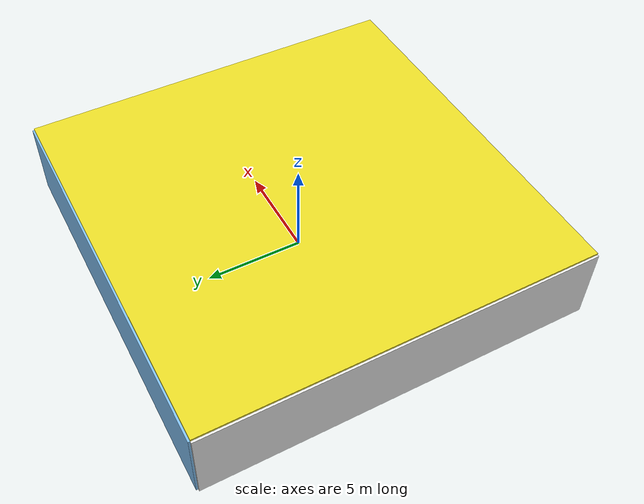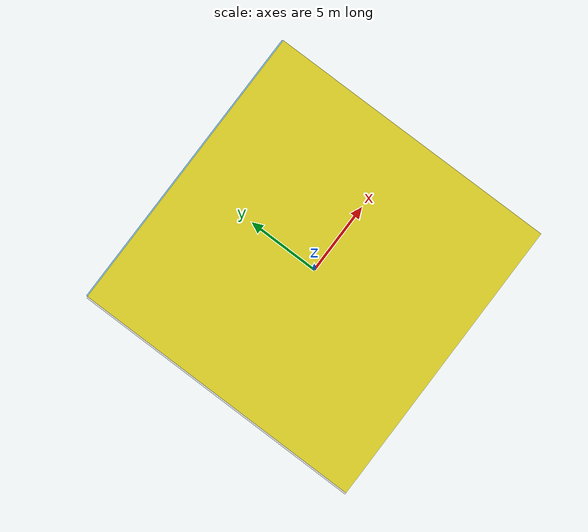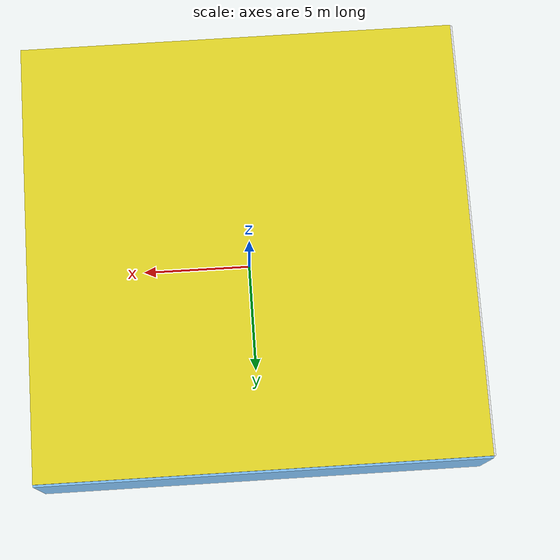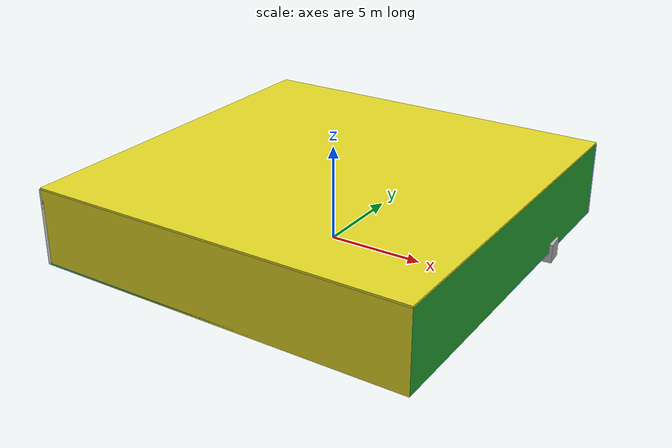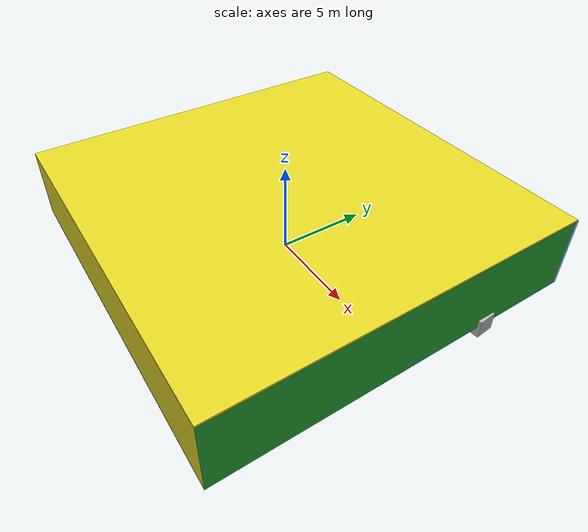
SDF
<sdf version="1.4">
 <world name="default">
  <physics type="ode">
   <max_step_size>0.001</max_step_size>
   <real_time_factor>1</real_time_factor>
   <real_time_update_rate>1000</real_time_update_rate>
   <gravity>0 0 -9.8</gravity>
  </physics>
  <scene><ambient>0.4 0.4 0.4 1</ambient><background>0.7 0.7 0.7 1</background><shadows>1</shadows></scene>
  <model name="Surrounding">
   <static>1</static>
   <link name="Ceiling">
    <collision name="Ceiling_Collision"><geometry><box><size>20 20 0.1</size></box></geometry></collision>
    <visual name="Ceiling_Visual">
     <geometry><box><size>20 20 0.1</size></box></geometry>
     <material>
      <script><uri>file://media/materials/scripts/gazebo.material</uri><name>Gazebo/YellowGlow</name></script>
     </material>
    </visual>
    <pose>0 0 4.05 0 0 0</pose>
   </link>
   <link name="Wall_South">
    <collision name="Wall_South_Collision">
     <geometry><box><size>20 0 4</size></box></geometry>
     <pose>0 0 2 0 -0 0</pose>
    </collision>
    <visual name="Wall_South_Visual">
     <pose>0 0 2 0 -0 0</pose>
     <geometry><box><size>20 0 4</size></box></geometry>
     <material>
      <script><uri>file://media/materials/scripts/gazebo.material</uri><name>Gazebo/YellowGlow</name></script>
     </material>
    </visual>
    <velocity_decay><linear>0</linear><angular>0</angular></velocity_decay>
    <pose>0 -10 0 0 -0 0</pose>
   </link>
   <link name="Wall_East">
    <collision name="Wall_21_Collision">
     <geometry><box><size>20 0 4</size></box></geometry>
     <pose>0 0 2 0 -0 0</pose>
    </collision>
    <visual name="Wall_21_Visual">
     <pose>0 0 2 0 -0 0</pose>
     <geometry><box><size>20 0 4</size></box></geometry>
     <material>
      <script><uri>file://media/materials/scripts/gazebo.material</uri><name>Gazebo/Green</name></script>
     </material>
    </visual>
    <velocity_decay><linear>0</linear><angular>0</angular></velocity_decay>
    <pose>10 0 0 0 -0 1.5708</pose>
   </link>
   <link name="Wall_North">
    <collision name="Wall_22_Collision">
     <geometry><box><size>20 0.2 4</size></box></geometry>
     <pose>0 0 2 0 -0 0</pose>
    </collision>
    <visual name="Wall_22_Visual">
     <pose>0 0 2 0 -0 0</pose>
     <geometry><box><size>20 0.2 4</size></box></geometry>
     <material>
      <script><uri>file://media/materials/scripts/gazebo.material</uri><name>Gazebo/SkyBlue</name></script>
     </material>
    </visual>
    <velocity_decay><linear>0</linear><angular>0</angular></velocity_decay>
    <pose>0 10 0 0 -0 0</pose>
   </link>
   <link name="Wall_West">
    <collision name="Wall_23_Collision">
     <geometry><box><size>20 0.2 4</size></box></geometry>
     <pose>0 0 2 0 -0 0</pose>
    </collision>
    <visual name="Wall_23_Visual">
     <pose>0 0 2 0 -0 0</pose>
     <geometry><box><size>20 0.2 4</size></box></geometry>
     <material>
      <script><uri>file://media/materials/scripts/gazebo.material</uri><name>Gazebo/White</name></script>
     </material>
    </visual>
    <velocity_decay><linear>0</linear><angular>0</angular></velocity_decay>
    <pose>-10 0 0 0 0 -1.5708</pose>
   </link>
   <link name="Ground_link">
    <collision name="collision">
     <pose>0 0 .05 0 -0 0</pose>
     <geometry><box><size>20 20 0.1</size></box></geometry>
    </collision>
    <visual name="visual">
     <pose>0 0 .05 0 -0 0</pose>
     <geometry><box><size>20 20 0.1</size></box></geometry>
     <material>
      <script>
       <uri>file://media/materials/scripts/gazebo.material</uri>
       <name>Gazebo/TurquoiseGlowOutline</name>
      </script>
     </material>
    </visual>
   </link>
   <static>1</static>
  </model>
  <spherical_coordinates>
   <surface_model>EARTH_WGS84</surface_model>
   <latitude_deg>0</latitude_deg>
   <longitude_deg>0</longitude_deg>
   <elevation>0</elevation>
   <heading_deg>0</heading_deg>
  </spherical_coordinates>
  <light name="lightball_0" type="diffuse">
   <diffuse>0.8 0.8 0.8 1</diffuse>
   <specular>0.2 0.2 0.2 1</specular>
   <attenuation>
    <range>100</range>
    <constant>0.7</constant>
    <linear>0.01</linear>
    <quadratic>0.001</quadratic>
   </attenuation>
   <direction>-0.5 0.1 -0.9</direction>
   <pose>-8.68078831678 -2.28733082621 1.09603042093 0 0 0</pose>
  </light>
  <light name="lightball_1" type="diffuse">
   <diffuse>0.8 0.8 0.8 1</diffuse>
   <specular>0.2 0.2 0.2 1</specular>
   <attenuation>
    <range>100</range>
    <constant>0.7</constant>
    <linear>0.01</linear>
    <quadratic>0.001</quadratic>
   </attenuation>
   <direction>-0.5 0.1 -0.9</direction>
   <pose>1.14726071034 8.47066259167 0.593083034109 0 0 0</pose>
  </light>
  <light name="lightball_2" type="diffuse">
   <diffuse>0.8 0.8 0.8 1</diffuse>
   <specular>0.2 0.2 0.2 1</specular>
   <attenuation>
    <range>100</range>
    <constant>0.7</constant>
    <linear>0.01</linear>
    <quadratic>0.001</quadratic>
   </attenuation>
   <direction>-0.5 0.1 -0.9</direction>
   <pose>-8.6343184361 -7.79719339435 1.20608013645 0 0 0</pose>
  </light>
  <light name="lightball_3" type="diffuse">
   <diffuse>0.8 0.8 0.8 1</diffuse>
   <specular>0.2 0.2 0.2 1</specular>
   <attenuation>
    <range>100</range>
    <constant>0.7</constant>
    <linear>0.01</linear>
    <quadratic>0.001</quadratic>
   </attenuation>
   <direction>-0.5 0.1 -0.9</direction>
   <pose>-6.6983915039 -0.216200343651 1.37613886502 0 0 0</pose>
  </light>
  <light name="lightball_4" type="diffuse">
   <diffuse>0.8 0.8 0.8 1</diffuse>
   <specular>0.2 0.2 0.2 1</specular>
   <attenuation>
    <range>100</range>
    <constant>0.7</constant>
    <linear>0.01</linear>
    <quadratic>0.001</quadratic>
   </attenuation>
   <direction>-0.5 0.1 -0.9</direction>
   <pose>-7.2954915515 7.84927564777 0.957297851712 0 0 0</pose>
  </light>
  <light name="lightball_5" type="diffuse">
   <diffuse>0.8 0.8 0.8 1</diffuse>
   <specular>0.2 0.2 0.2 1</specular>
   <attenuation>
    <range>100</range>
    <constant>0.7</constant>
    <linear>0.01</linear>
    <quadratic>0.001</quadratic>
   </attenuation>
   <direction>-0.5 0.1 -0.9</direction>
   <pose>-6.3246403129 0.82220024408 0.543779011375 0 0 0</pose>
  </light>
  <light name="lightball_6" type="diffuse">
   <diffuse>0.8 0.8 0.8 1</diffuse>
   <specular>0.2 0.2 0.2 1</specular>
   <attenuation>
    <range>100</range>
    <constant>0.7</constant>
    <linear>0.01</linear>
    <quadratic>0.001</quadratic>
   </attenuation>
   <direction>-0.5 0.1 -0.9</direction>
   <pose>-4.10884009413 9.20369276973 1.50242730604 0 0 0</pose>
  </light>
  <light name="lightball_7" type="diffuse">
   <diffuse>0.8 0.8 0.8 1</diffuse>
   <specular>0.2 0.2 0.2 1</specular>
   <attenuation>
    <range>100</range>
    <constant>0.7</constant>
    <linear>0.01</linear>
    <quadratic>0.001</quadratic>
   </attenuation>
   <direction>-0.5 0.1 -0.9</direction>
   <pose>0.943638436449 7.08682517616 3.54022054199 0 0 0</pose>
  </light>
  <light name="lightball_8" type="diffuse">
   <diffuse>0.8 0.8 0.8 1</diffuse>
   <specular>0.2 0.2 0.2 1</specular>
   <attenuation>
    <range>100</range>
    <constant>0.7</constant>
    <linear>0.01</linear>
    <quadratic>0.001</quadratic>
   </attenuation>
   <direction>-0.5 0.1 -0.9</direction>
   <pose>-7.76835666417 -5.90851306348 1.58653436182 0 0 0</pose>
  </light>
  <light name="lightball_9" type="diffuse">
   <diffuse>0.8 0.8 0.8 1</diffuse>
   <specular>0.2 0.2 0.2 1</specular>
   <attenuation>
    <range>100</range>
    <constant>0.7</constant>
    <linear>0.01</linear>
    <quadratic>0.001</quadratic>
   </attenuation>
   <direction>-0.5 0.1 -0.9</direction>
   <pose>7.12493480189 -8.63836940889 3.70132901315 0 0 0</pose>
  </light>
  <light name="lightball_10" type="diffuse">
   <diffuse>0.8 0.8 0.8 1</diffuse>
   <specular>0.2 0.2 0.2 1</specular>
   <attenuation>
    <range>100</range>
    <constant>0.7</constant>
    <linear>0.01</linear>
    <quadratic>0.001</quadratic>
   </attenuation>
   <direction>-0.5 0.1 -0.9</direction>
   <pose>-3.64615761334 8.10410684584 3.23858640491 0 0 0</pose>
  </light>
  <light name="lightball_11" type="diffuse">
   <diffuse>0.8 0.8 0.8 1</diffuse>
   <specular>0.2 0.2 0.2 1</specular>
   <attenuation>
    <range>100</range>
    <constant>0.7</constant>
    <linear>0.01</linear>
    <quadratic>0.001</quadratic>
   </attenuation>
   <direction>-0.5 0.1 -0.9</direction>
   <pose>-3.17965883373 0.47351594836 2.85833935804 0 0 0</pose>
  </light>
  <include><uri>model://cabinet</uri><pose>-7.28915653888 -8.2649095727 0 0 0 1.36923384533</pose></include>
  <include>
   <uri>model://textured_shapes</uri>
   <pose>-7.33944092206 1.86593404984 0 0 0 2.37789827432</pose>
  </include>
  <include><uri>model://cabinet</uri><pose>-4.20388221602 -0.827159000535 0 0 0 0.617373781006</pose></include>
  <include><uri>model://table</uri><pose>-4.11259423248 0.916573333118 0 0 0 3.04367911516</pose></include>
  <include>
   <uri>model://robocup_3Dsim_goal</uri>
   <pose>-1.51447614218 -4.07288739047 0 0 0 2.69601333772</pose>
  </include>
  <include>
   <uri>model://robocup_3Dsim_goal</uri>
   <pose>2.15868366943 -4.94678564649 0 0 0 0.888338825592</pose>
  </include>
  <include>
   <uri>model://construction_cone</uri>
   <pose>4.69629034351 -1.15594076428 0 0 0 1.70983103209</pose>
  </include>
  <include><uri>model://table</uri><pose>4.86754811902 2.13625911852 0 0 0 2.79814635175</pose></include>
  <include><uri>model://cabinet</uri><pose>8.00860973094 -7.09839417899 0 0 0 0.89502017101</pose></include>
  <include><uri>model://cabinet</uri><pose>6.80827136096 -1.69573503503 0 0 0 3.08569648772</pose></include>
  <include>
   <uri>model://textured_shapes</uri>
   <pose>8.13884787731 4.66340421355 0 0 0 1.65468196645</pose>
  </include>
 </world>
</sdf>

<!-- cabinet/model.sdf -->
<sdf version="1.5">
  <model name="cabinet">
    <static>true</static>
    <link name="cabinet_bottom_plate">
      <inertial>
        <pose>0 0 -1 0 0 0</pose>
        <inertia>
          <ixx>2.050000</ixx>
          <ixy>0</ixy>
          <ixz>0</ixz>
          <iyy>2.050000</iyy>
          <iyz>0</iyz>
          <izz>2.050000</izz>
        </inertia>
        <mass>25.000000</mass>
      </inertial>
      <collision name="cabinet_bottom_plate_geom">
        <pose>0 0 0.010000 0 0 0</pose>
        <geometry>
          <box>
            <size>0.450000 0.450000 0.020000</size>
          </box>
        </geometry>
      </collision>
      <visual name="cabinet_bottom_plate_geom_visual">
        <pose>0 0 0.010000 0 0 0</pose>
        <geometry>
          <box>
            <size>0.450000 0.450000 0.020000</size>
          </box>
        </geometry>
        <material>
          <script>
            <uri>model://media/materials/scripts/gazebo.material</uri>
            <name>Gazebo/Wood</name>
          </script>
        </material>
      </visual>
      <collision name="cabinet_bottom_plate_geom_cabinet_back_plate">
        <pose>0.235000 0 0.510000 0 0 0</pose>
        <geometry>
          <box>
            <size>0.020000 0.450000 1.020000</size>
          </box>
        </geometry>
      </collision>
      <visual name="cabinet_bottom_plate_geom_cabinet_back_plate_visual">
        <pose>0.235000 0 0.510000 0 0 0</pose>
        <geometry>
          <box>
            <size>0.020000 0.450000 1.020000</size>
          </box>
        </geometry>
        <material>
          <script>
            <uri>model://media/materials/scripts/gazebo.material</uri>
            <name>Gazebo/Wood</name>
          </script>
        </material>
      </visual>
      <collision name="cabinet_bottom_plate_geom_cabinet_left_plate">
        <pose>0 0.235000 0.510000 0 0 0</pose>
        <geometry>
          <box>
            <size>0.450000 0.020000 1.020000</size>
          </box>
        </geometry>
      </collision>
      <visual name="cabinet_bottom_plate_geom_cabinet_left_plate_visual">
        <pose>0 0.235000 0.510000 0 0 0</pose>
        <geometry>
          <box>
            <size>0.450000 0.020000 1.020000</size>
          </box>
        </geometry>
        <material>
          <script>
            <uri>model://media/materials/scripts/gazebo.material</uri>
            <name>Gazebo/Wood</name>
          </script>
        </material>
      </visual>
      <collision name="cabinet_bottom_plate_geom_cabinet_middle_plate">
        <pose>0 0 0.510000 0 0 0</pose>
        <geometry>
          <box>
            <size>0.450000 0.450000 0.020000</size>
          </box>
        </geometry>
      </collision>
      <visual name="cabinet_bottom_plate_geom_cabinet_middle_plate_visual">
        <pose>0 0 0.510000 0 0 0</pose>
        <geometry>
          <box>
            <size>0.450000 0.450000 0.020000</size>
          </box>
        </geometry>
        <material>
          <script>
            <uri>model://media/materials/scripts/gazebo.material</uri>
            <name>Gazebo/Wood</name>
          </script>
        </material>
      </visual>
      <collision name="cabinet_bottom_plate_geom_cabinet_right_plate">
        <pose>0 -0.235000 0.510000 0 0 0</pose>
        <geometry>
          <box>
            <size>0.450000 0.020000 1.020000</size>
          </box>
        </geometry>
      </collision>
      <visual name="cabinet_bottom_plate_geom_cabinet_right_plate_visual">
        <pose>0 -0.235000 0.510000 0 0 0</pose>
        <geometry>
          <box>
            <size>0.450000 0.020000 1.020000</size>
          </box>
        </geometry>
        <material>
          <script>
            <uri>model://media/materials/scripts/gazebo.material</uri>
            <name>Gazebo/Wood</name>
          </script>
        </material>
      </visual>
      <collision name="cabinet_bottom_plate_geom_cabinet_top_plate">
        <pose>0 0 1.010000 0 0 0</pose>
        <geometry>
          <box>
            <size>0.450000 0.450000 0.020000</size>
          </box>
        </geometry>
      </collision>
      <visual name="cabinet_bottom_plate_geom_cabinet_top_plate_visual">
        <pose>0 0 1.010000 0 0 0</pose>
        <geometry>
          <box>
            <size>0.450000 0.450000 0.020000</size>
          </box>
        </geometry>
        <material>
          <script>
            <uri>model://media/materials/scripts/gazebo.material</uri>
            <name>Gazebo/Wood</name>
          </script>
        </material>
      </visual>
    </link>
  </model>
</sdf>

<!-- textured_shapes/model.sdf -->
<sdf version="1.6">
  <model name="textured_shapes">
    <pose>0 0 0.5 0 0 0</pose>
    <link name="box">
      <pose>0 -1.5 0 0 0 0</pose>
      <collision name="collision">
        <geometry>
          <box>
            <size>1 1 1</size>
          </box>
        </geometry>
      </collision>
      <visual name="visual">
        <geometry>
          <box>
            <size>1 1 1</size>
          </box>
        </geometry>
        <material>
          <script>
            <uri>model://../model_source/models/textured_shapes/materials/scripts</uri>
            <uri>model://../model_source/models/textured_shapes/materials/textures</uri>
            <name>TexturedShape/Squares</name>
          </script>
        </material>
      </visual>
    </link>
    <link name="sphere">
      <collision name="collision">
        <geometry>
          <sphere>
            <radius>0.5</radius>
          </sphere>
        </geometry>
      </collision>
      <visual name="visual">
        <geometry>
          <sphere>
            <radius>0.5</radius>
          </sphere>
        </geometry>
        <material>
          <script>
            <uri>model://../model_source/models/textured_shapes/materials/scripts</uri>
            <uri>model://../model_source/models/textured_shapes/materials/textures</uri>
            <name>TexturedShape/Squares</name>
          </script>
        </material>
      </visual>
    </link>
    <link name="cylinder">
      <pose>0 1.5 0 0 0 0</pose>
      <collision name="collision">
        <geometry>
          <cylinder>
            <radius>0.5</radius>
            <length>1</length>
          </cylinder>
        </geometry>
      </collision>
      <visual name="visual">
        <geometry>
          <cylinder>
            <radius>0.5</radius>
            <length>1</length>
          </cylinder>
        </geometry>
        <material>
          <script>
            <uri>model://../model_source/models/textured_shapes/materials/scripts</uri>
            <uri>model://../model_source/models/textured_shapes/materials/textures</uri>
            <name>TexturedShape/Squares</name>
          </script>
        </material>
      </visual>
    </link>
  </model>
</sdf>

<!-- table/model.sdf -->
<sdf version="1.5">
  <model name="table">
    <static>true</static>
    <link name="link">
      <collision name="surface">
        <pose>0 0 1.0 0 0 0</pose>
        <geometry>
          <box>
            <size>1.5 0.8 0.03</size>
          </box>
        </geometry>
        <surface>
          <friction>
            <ode>
              <mu>0.6</mu>
              <mu2>0.6</mu2>
            </ode>
          </friction>
        </surface>
      </collision>
      <visual name="visual1">
        <pose>0 0 1.0 0 0 0</pose>
        <geometry>
          <box>
            <size>1.5 0.8 0.03</size>
          </box>
        </geometry>
        <material>
          <script>
            <uri>model://media/materials/scripts/gazebo.material</uri>
            <name>Gazebo/Wood</name>
          </script>
        </material>
      </visual>
      <collision name="front_left_leg">
        <pose>0.68 0.38 0.5 0 0 0</pose>
        <geometry>
          <cylinder>
            <radius>0.02</radius>
            <length>1.0</length>
          </cylinder>
        </geometry>
      </collision>
      <visual name="front_left_leg">
        <pose>0.68 0.38 0.5 0 0 0</pose>
        <geometry>
          <cylinder>
            <radius>0.02</radius>
            <length>1.0</length>
          </cylinder>
        </geometry>
        <material>
          <script>
            <uri>model://media/materials/scripts/gazebo.material</uri>
            <name>Gazebo/Grey</name>
          </script>
        </material>
      </visual>
      <collision name="front_right_leg">
        <pose>0.68 -0.38 0.5 0 0 0</pose>
        <geometry>
          <cylinder>
            <radius>0.02</radius>
            <length>1.0</length>
          </cylinder>
        </geometry>
      </collision>
      <visual name="front_right_leg">
        <pose>0.68 -0.38 0.5 0 0 0</pose>
        <geometry>
          <cylinder>
            <radius>0.02</radius>
            <length>1.0</length>
          </cylinder>
        </geometry>
        <material>
          <script>
            <uri>model://media/materials/scripts/gazebo.material</uri>
            <name>Gazebo/Grey</name>
          </script>
        </material>
      </visual>
      <collision name="back_right_leg">
        <pose>-0.68 -0.38 0.5 0 0 0</pose>
        <geometry>
          <cylinder>
            <radius>0.02</radius>
            <length>1.0</length>
          </cylinder>
        </geometry>
      </collision>
      <visual name="back_right_leg">
        <pose>-0.68 -0.38 0.5 0 0 0</pose>
        <geometry>
          <cylinder>
            <radius>0.02</radius>
            <length>1.0</length>
          </cylinder>
        </geometry>
        <material>
          <script>
            <uri>model://media/materials/scripts/gazebo.material</uri>
            <name>Gazebo/Grey</name>
          </script>
        </material>
      </visual>
      <collision name="back_left_leg">
        <pose>-0.68 0.38 0.5 0 0 0</pose>
        <geometry>
          <cylinder>
            <radius>0.02</radius>
            <length>1.0</length>
          </cylinder>
        </geometry>
      </collision>
      <visual name="back_left_leg">
        <pose>-0.68 0.38 0.5 0 0 0</pose>
        <geometry>
          <cylinder>
            <radius>0.02</radius>
            <length>1.0</length>
          </cylinder>
        </geometry>
        <material>
          <script>
            <uri>model://media/materials/scripts/gazebo.material</uri>
            <name>Gazebo/Grey</name>
          </script>
        </material>
      </visual>
    </link>
  </model>
</sdf>

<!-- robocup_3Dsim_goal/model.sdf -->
<sdf version="1.5">
  <model name="robocup_3d_goal">
    <static>true</static>
    <link name="left_post">
      <pose>0 1.05 0.45 0 0 0</pose>
      <collision name="collision">
        <geometry>
          <cylinder>
            <radius>0.05</radius>
            <length>0.9</length>
          </cylinder>
        </geometry>
      </collision>
      <visual name="visual">
        <geometry>
          <cylinder>
            <radius>0.05</radius>
            <length>0.9</length>
          </cylinder>
        </geometry>
        <material>
          <script>
            <uri>file://media/materials/scripts/gazebo.material</uri>
            <name>Gazebo/ZincYellow</name>
          </script>
        </material>
      </visual>
    </link>
    <link name="left_support_horiz_lower">
      <pose>0.30 1.05 0.01 0 0 0</pose>
      <collision name="collision">
        <geometry>
          <box>
            <size>0.50 0.02 0.02</size>
          </box>
        </geometry>
      </collision>
      <visual name="visual">
        <geometry>
          <box>
            <size>0.50 0.02 0.02</size>
          </box>
        </geometry>
        <material>
          <script>
            <uri>file://media/materials/scripts/gazebo.material</uri>
            <name>Gazebo/White</name>
          </script>
        </material>
      </visual>
    </link>
    <link name="left_support_horiz_upper">
      <pose>0.30 1.05 0.79 0 0 0</pose>
      <collision name="collision">
        <geometry>
          <box>
            <size>0.50 0.02 0.02</size>
          </box>
        </geometry>
      </collision>
      <visual name="visual">
        <geometry>
          <box>
            <size>0.50 0.02 0.02</size>
          </box>
        </geometry>
        <material>
          <script>
            <uri>file://media/materials/scripts/gazebo.material</uri>
            <name>Gazebo/White</name>
          </script>
        </material>
      </visual>
    </link>
    <link name="left_support_vertical">
      <pose>0.56 1.05 0.4 0 1.5708 0</pose>
      <collision name="collision">
        <geometry>
          <box>
            <size>0.80 0.02 0.02</size>
          </box>
        </geometry>
      </collision>
      <visual name="visual">
        <geometry>
          <box>
            <size>0.80 0.02 0.02</size>
          </box>
        </geometry>
        <material>
          <script>
            <uri>file://media/materials/scripts/gazebo.material</uri>
            <name>Gazebo/White</name>
          </script>
        </material>
      </visual>
    </link>
    <link name="right_support_horiz_lower">
      <pose>0.30 -1.05 0.01 0 0 0</pose>
      <collision name="collision">
        <geometry>
          <box>
            <size>0.50 0.02 0.02</size>
          </box>
        </geometry>
      </collision>
      <visual name="visual">
        <geometry>
          <box>
            <size>0.50 0.02 0.02</size>
          </box>
        </geometry>
        <material>
          <script>
            <uri>file://media/materials/scripts/gazebo.material</uri>
            <name>Gazebo/White</name>
          </script>
        </material>
      </visual>
    </link>
    <link name="right_support_horiz_upper">
      <pose>0.30 -1.05 0.79 0 0 0</pose>
      <collision name="collision">
        <geometry>
          <box>
            <size>0.50 0.02 0.02</size>
          </box>
        </geometry>
      </collision>
      <visual name="visual">
        <geometry>
          <box>
            <size>0.50 0.02 0.02</size>
          </box>
        </geometry>
        <material>
          <script>
            <uri>file://media/materials/scripts/gazebo.material</uri>
            <name>Gazebo/White</name>
          </script>
        </material>
      </visual>
    </link>
    <link name="right_support_vertical">
      <pose>0.56 -1.05 0.4 0 1.5708 0</pose>
      <collision name="collision">
        <geometry>
          <box>
            <size>0.80 0.02 0.02</size>
          </box>
        </geometry>
      </collision>
      <visual name="visual">
        <geometry>
          <box>
            <size>0.80 0.02 0.02</size>
          </box>
        </geometry>
        <material>
          <script>
            <uri>file://media/materials/scripts/gazebo.material</uri>
            <name>Gazebo/White</name>
          </script>
        </material>
      </visual>
    </link>
    <link name="center_support_horiz_lower">
      <pose>0.56 0 0.01 0 1.5708 0</pose>
      <collision name="collision">
        <geometry>
          <box>
            <size>0.02 2.08 0.02</size>
          </box>
        </geometry>
      </collision>
      <visual name="visual">
        <geometry>
          <box>
            <size>0.02 2.08 0.02</size>
          </box>
        </geometry>
        <material>
          <script>
            <uri>file://media/materials/scripts/gazebo.material</uri>
            <name>Gazebo/White</name>
          </script>
        </material>
      </visual>
    </link>
    <link name="center_support_horiz_upper">
      <pose>0.56 0 0.79 0 1.5708 0</pose>
      <collision name="collision">
        <geometry>
          <box>
            <size>0.02 2.08 0.02</size>
          </box>
        </geometry>
      </collision>
      <visual name="visual">
        <geometry>
          <box>
            <size>0.02 2.08 0.02</size>
          </box>
        </geometry>
        <material>
          <script>
            <uri>file://media/materials/scripts/gazebo.material</uri>
            <name>Gazebo/White</name>
          </script>
        </material>
      </visual>
    </link>
    <link name="right_post">
      <pose>0 -1.05 0.45 0 0 0</pose>
      <collision name="collision">
        <geometry>
          <cylinder>
            <radius>0.05</radius>
            <length>0.9</length>
          </cylinder>
        </geometry>
      </collision>
      <visual name="visual">
        <geometry>
          <cylinder>
            <radius>0.05</radius>
            <length>0.9</length>
          </cylinder>
        </geometry>
        <material>
          <script>
            <uri>file://media/materials/scripts/gazebo.material</uri>
            <name>Gazebo/ZincYellow</name>
          </script>
        </material>
      </visual>
    </link>
    <link name="crossbar">
      <pose>0 0 0.85 1.57 1.57 0</pose>
      <collision name="collision">
        <geometry>
          <cylinder>
            <radius>0.05</radius>
            <length>2.0</length>
          </cylinder>
        </geometry>
      </collision>
      <visual name="visual">
        <geometry>
          <cylinder>
            <radius>0.05</radius>
            <length>2.0</length>
          </cylinder>
        </geometry>
        <material>
          <script>
            <uri>file://media/materials/scripts/gazebo.material</uri>
            <name>Gazebo/ZincYellow</name>
          </script>
        </material>
      </visual>
    </link>
    <link name="center_net">
      <pose>0.56 0 0.40 0 0 0</pose>
      <collision name="collision">
        <geometry>
          <box>
            <size>0.01 2.1 0.80</size>
          </box>
        </geometry>
      </collision>
      <visual name="visual">
        <geometry>
          <box>
            <size>0.01 2.1 0.80</size>
          </box>
        </geometry>
        <material>
          <script>
            <uri>model://../model_source/models/robocup09_spl_field/materials/scripts/</uri>
            <uri>model://../model_source/models/robocup09_spl_field/materials/textures/</uri>
            <name>RoboCup/Net</name>
          </script>
        </material>
      </visual>
    </link>
    <link name="left_net">
      <pose>0.30 1.05 0.40 0 0 0</pose>
      <collision name="collision">
        <geometry>
          <box>
            <size>0.50 0.01 0.76</size>
          </box>
        </geometry>
      </collision>
      <visual name="visual">
        <geometry>
          <box>
            <size>0.50 0.01 0.76</size>
          </box>
        </geometry>
        <material>
          <script>
            <uri>model://../model_source/models/robocup09_spl_field/materials/scripts/</uri>
            <uri>model://../model_source/models/robocup09_spl_field/materials/textures/</uri>
            <name>RoboCup/Net</name>
          </script>
        </material>
      </visual>
    </link>
    <link name="right_net">
      <pose>0.30 -1.05 0.40 0 0 0</pose>
      <collision name="collision">
        <geometry>
          <box>
            <size>0.50 0.01 0.76</size>
          </box>
        </geometry>
      </collision>
      <visual name="visual">
        <geometry>
          <box>
            <size>0.50 0.01 0.76</size>
          </box>
        </geometry>
        <material>
          <script>
            <uri>model://../model_source/models/robocup09_spl_field/materials/scripts/</uri>
            <uri>model://../model_source/models/robocup09_spl_field/materials/textures/</uri>
            <name>RoboCup/Net</name>
          </script>
        </material>
      </visual>
    </link>
  </model>
</sdf>

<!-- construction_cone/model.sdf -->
<sdf version="1.5">
  <model name="Construction Cone">
    <link name="link">
      <collision name="collision">
        <geometry>
          <mesh>
            <scale>10 10 10</scale>
            <uri>file://isr-testbed/construction_cone/meshes/construction_cone.dae</uri>
          </mesh>
        </geometry>
      </collision>
      <visual name="visual">
        <geometry>
          <mesh>
            <scale>10 10 10</scale>
            <uri>file://isr-testbed/construction_cone/meshes/construction_cone.dae</uri>
          </mesh>
        </geometry>
      </visual>
    </link>
  </model>
</sdf>
